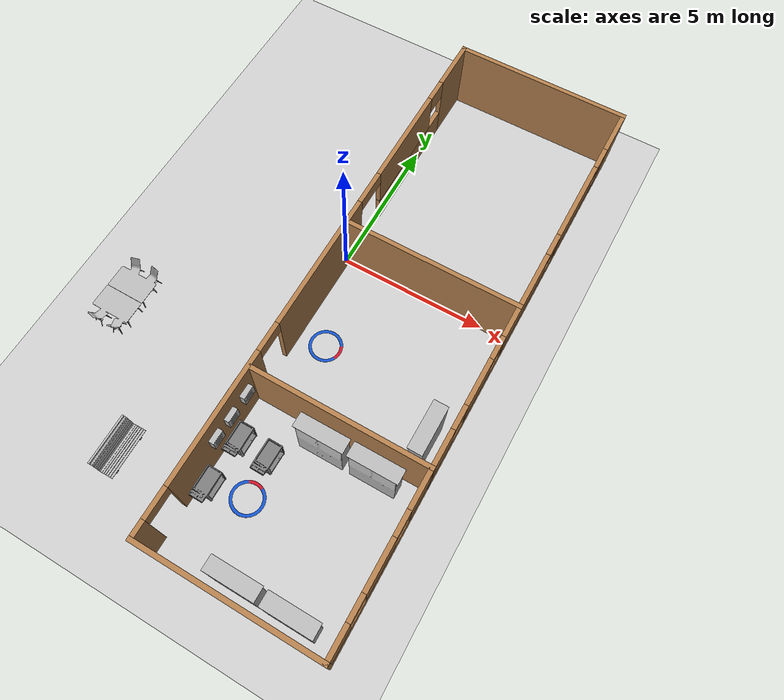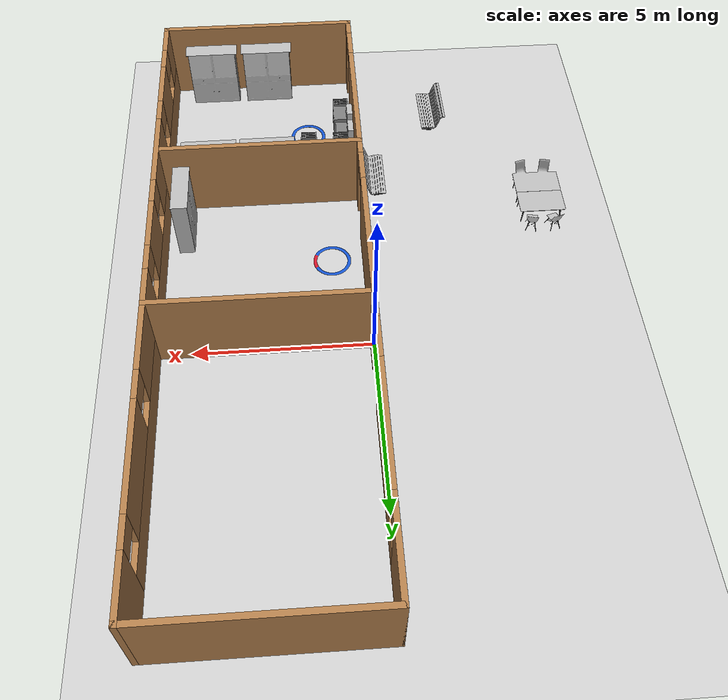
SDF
<sdf version="1.6">
 <world name="default">
  <model name="ground_plane">
   <static>1</static>
   <link name="link">
    <collision name="collision">
     <geometry><plane><normal>0 0 1</normal><size>100 100</size></plane></geometry>
     <surface>
      <contact><collide_bitmask>65535</collide_bitmask></contact>
      <friction><ode><mu>100</mu><mu2>50</mu2></ode></friction>
     </surface>
    </collision>
    <visual name="visual">
     <cast_shadows>0</cast_shadows>
     <geometry><plane><normal>0 0 1</normal><size>100 100</size></plane></geometry>
     <material>
      <script><uri>file://media/materials/scripts/gazebo.material</uri><name>Gazebo/Grey</name></script>
     </material>
    </visual>
   </link>
  </model>
  <model name="chairs_and_table">
   <static>0</static>
   <link name="link">
    <inertial>
     <mass>30</mass>
     <inertia><ixx>1</ixx><ixy>0</ixy><ixz>0</ixz><iyy>1</iyy><iyz>0</iyz><izz>1</izz></inertia>
    </inertial>
    <collision name="collision">
     <geometry><mesh><uri>model://chairs_and_table/chairs_and_table.dae</uri></mesh></geometry>
    </collision>
    <visual name="visual">
     <geometry><mesh><uri>model://chairs_and_table/chairs_and_table.dae</uri></mesh></geometry>
    </visual>
   </link>
   <pose>-5.37703 -4.47738 -0.009666 -0.001996 0.000192 -3.1371</pose>
  </model>
  <model name="closet">
   <static>0</static>
   <link name="link">
    <inertial>
     <mass>10</mass>
     <inertia><ixx>0.2</ixx><ixy>0</ixy><ixz>0</ixz><iyy>0.2</iyy><iyz>0</iyz><izz>0.2</izz></inertia>
    </inertial>
    <collision name="collision"><geometry><mesh><uri>model://closet/closet.dae</uri></mesh></geometry></collision>
    <visual name="visual"><geometry><mesh><uri>model://closet/closet.dae</uri></mesh></geometry></visual>
   </link>
   <pose>5.25745 -4.39069 -0.030005 2.2e-05 0 1.57171</pose>
  </model>
  <model name="closet_3">
   <static>0</static>
   <link name="link">
    <inertial>
     <mass>10</mass>
     <inertia><ixx>0.2</ixx><ixy>0</ixy><ixz>0</ixz><iyy>0.2</iyy><iyz>0</iyz><izz>0.2</izz></inertia>
    </inertial>
    <collision name="collision"><geometry><mesh><uri>model://closet/closet.dae</uri></mesh></geometry></collision>
    <visual name="visual"><geometry><mesh><uri>model://closet/closet.dae</uri></mesh></geometry></visual>
   </link>
   <pose>4.51324 -10.4762 -0.030005 -2.2e-05 0 0.000162</pose>
  </model>
  <model name="closet_4">
   <static>0</static>
   <link name="link">
    <inertial>
     <mass>10</mass>
     <inertia><ixx>0.2</ixx><ixy>0</ixy><ixz>0</ixz><iyy>0.2</iyy><iyz>0</iyz><izz>0.2</izz></inertia>
    </inertial>
    <collision name="collision"><geometry><mesh><uri>model://closet/closet.dae</uri></mesh></geometry></collision>
    <visual name="visual"><geometry><mesh><uri>model://closet/closet.dae</uri></mesh></geometry></visual>
   </link>
   <pose>2.75334 -10.466 -0.03 0 -0 0.000201</pose>
  </model>
  <model name="wall_locker_0">
   <static>1</static>
   <link name="link">
    <inertial>
     <mass>10</mass>
     <inertia><ixx>1</ixx><ixy>0</ixy><ixz>0</ixz><iyy>1</iyy><iyz>0</iyz><izz>1</izz></inertia>
    </inertial>
    <collision name="collision">
     <geometry><mesh><uri>model://wall_locker/wall_locker.dae</uri></mesh></geometry>
    </collision>
    <visual name="visual">
     <geometry><mesh><uri>model://wall_locker/wall_locker.dae</uri></mesh></geometry>
    </visual>
   </link>
   <pose>0.075717 -6.03292 1.19652 0 -0 0</pose>
  </model>
  <model name="wall_locker_1">
   <static>1</static>
   <link name="link">
    <inertial>
     <mass>10</mass>
     <inertia><ixx>1</ixx><ixy>0</ixy><ixz>0</ixz><iyy>1</iyy><iyz>0</iyz><izz>1</izz></inertia>
    </inertial>
    <collision name="collision">
     <geometry><mesh><uri>model://wall_locker/wall_locker.dae</uri></mesh></geometry>
    </collision>
    <visual name="visual">
     <geometry><mesh><uri>model://wall_locker/wall_locker.dae</uri></mesh></geometry>
    </visual>
   </link>
   <pose>0.073263 -6.82374 1.18576 0 -0 0</pose>
  </model>
  <model name="wall_locker_2">
   <static>1</static>
   <link name="link">
    <inertial>
     <mass>10</mass>
     <inertia><ixx>1</ixx><ixy>0</ixy><ixz>0</ixz><iyy>1</iyy><iyz>0</iyz><izz>1</izz></inertia>
    </inertial>
    <collision name="collision">
     <geometry><mesh><uri>model://wall_locker/wall_locker.dae</uri></mesh></geometry>
    </collision>
    <visual name="visual">
     <geometry><mesh><uri>model://wall_locker/wall_locker.dae</uri></mesh></geometry>
    </visual>
   </link>
   <pose>0.057875 -7.55937 1.17876 0 -0 0</pose>
  </model>
  <model name="service_cart_1">
   <static>0</static>
   <link name="link">
    <inertial>
     <mass>10</mass>
     <inertia><ixx>1</ixx><ixy>0</ixy><ixz>0</ixz><iyy>1</iyy><iyz>0</iyz><izz>1</izz></inertia>
    </inertial>
    <collision name="collision">
     <geometry><mesh><uri>model://service_cart/service_cart.dae</uri></mesh></geometry>
    </collision>
    <visual name="visual">
     <geometry><mesh><uri>model://service_cart/service_cart.dae</uri></mesh></geometry>
    </visual>
   </link>
   <pose>0.451875 -8.62013 -0.000537 0.001184 0.000487 -0</pose>
  </model>
  <model name="service_cart_2">
   <static>0</static>
   <link name="link">
    <inertial>
     <mass>10</mass>
     <inertia><ixx>1</ixx><ixy>0</ixy><ixz>0</ixz><iyy>1</iyy><iyz>0</iyz><izz>1</izz></inertia>
    </inertial>
    <collision name="collision">
     <geometry><mesh><uri>model://service_cart/service_cart.dae</uri></mesh></geometry>
    </collision>
    <visual name="visual">
     <geometry><mesh><uri>model://service_cart/service_cart.dae</uri></mesh></geometry>
    </visual>
   </link>
   <pose>0.520794 -7.05742 -0.000537 0.001184 0.000487 -0</pose>
  </model>
  <model name="service_cart_3">
   <static>0</static>
   <link name="link">
    <inertial>
     <mass>10</mass>
     <inertia><ixx>1</ixx><ixy>0</ixy><ixz>0</ixz><iyy>1</iyy><iyz>0</iyz><izz>1</izz></inertia>
    </inertial>
    <collision name="collision">
     <geometry><mesh><uri>model://service_cart/service_cart.dae</uri></mesh></geometry>
    </collision>
    <visual name="visual">
     <geometry><mesh><uri>model://service_cart/service_cart.dae</uri></mesh></geometry>
    </visual>
   </link>
   <pose>1.5331 -7.10701 -0.000536 0.001187 0.000488 -0.010553</pose>
  </model>
  <model name="chairs_and_table_1">
   <static>0</static>
   <link name="link">
    <inertial>
     <mass>30</mass>
     <inertia><ixx>1</ixx><ixy>0</ixy><ixz>0</ixz><iyy>1</iyy><iyz>0</iyz><izz>1</izz></inertia>
    </inertial>
    <collision name="collision">
     <geometry><mesh><uri>model://chairs_and_table/chairs_and_table.dae</uri></mesh></geometry>
    </collision>
    <visual name="visual">
     <geometry><mesh><uri>model://chairs_and_table/chairs_and_table.dae</uri></mesh></geometry>
    </visual>
   </link>
   <pose>-5.38185 -5.2842 -0.009666 -0.001996 0.000192 0.000768</pose>
  </model>
  <model name="wooden_bench_1">
   <static>0</static>
   <link name="link">
    <inertial>
     <pose>0 -0.2 0 0 -0 0</pose>
     <mass>10</mass>
     <inertia><ixx>1</ixx><ixy>0</ixy><ixz>0</ixz><iyy>1</iyy><iyz>0</iyz><izz>1</izz></inertia>
    </inertial>
    <collision name="collision">
     <geometry><mesh><uri>model://wooden_bench/wooden_bench.dae</uri></mesh></geometry>
    </collision>
    <visual name="visual">
     <geometry><mesh><uri>model://wooden_bench/wooden_bench.dae</uri></mesh></geometry>
    </visual>
   </link>
   <pose>-0.572127 -6.21204 0.01737 0.138494 2.4e-05 1.56987</pose>
  </model>
  <model name="wooden_bench_2">
   <static>0</static>
   <link name="link">
    <inertial>
     <pose>0 -0.2 0 0 -0 0</pose>
     <mass>10</mass>
     <inertia><ixx>1</ixx><ixy>0</ixy><ixz>0</ixz><iyy>1</iyy><iyz>0</iyz><izz>1</izz></inertia>
    </inertial>
    <collision name="collision">
     <geometry><mesh><uri>model://wooden_bench/wooden_bench.dae</uri></mesh></geometry>
    </collision>
    <visual name="visual">
     <geometry><mesh><uri>model://wooden_bench/wooden_bench.dae</uri></mesh></geometry>
    </visual>
   </link>
   <pose>-2.37006 -8.99772 0.016774 0.134548 3.4e-05 -1.56092</pose>
  </model>
  <model name="hospital_room2_empty">
   <pose>2.96855 -1.47616 0 0 -0 0</pose>
   <link name="Wall_0">
    <pose>-2.925 0 0 0 -0 -1.5708</pose>
    <visual name="Wall_0_Visual_0">
     <pose>-8.67873 0 1.25 0 -0 0</pose>
     <geometry><box><size>1.79254 0.15 2.5</size></box></geometry>
     <material>
      <script><uri>file://media/materials/scripts/gazebo.material</uri><name>Gazebo/Wood</name></script>
      <ambient>1 1 1 1</ambient>
     </material>
     <meta><layer>0</layer></meta>
    </visual>
    <collision name="Wall_0_Collision_0">
     <geometry><box><size>1.79254 0.15 2.5</size></box></geometry>
     <pose>-8.67873 0 1.25 0 -0 0</pose>
    </collision>
    <visual name="Wall_0_Visual_1">
     <pose>0.083783 0 1.25 0 -0 0</pose>
     <geometry><box><size>4.77575 0.15 2.5</size></box></geometry>
     <material>
      <script><uri>file://media/materials/scripts/gazebo.material</uri><name>Gazebo/Wood</name></script>
      <ambient>1 1 1 1</ambient>
     </material>
     <meta><layer>0</layer></meta>
    </visual>
    <collision name="Wall_0_Collision_1">
     <geometry><box><size>4.77575 0.15 2.5</size></box></geometry>
     <pose>0.083783 0 1.25 0 -0 0</pose>
    </collision>
    <visual name="Wall_0_Visual_2">
     <pose>5.70011 0 1.25 0 -0 0</pose>
     <geometry><box><size>4.4569 0.15 2.5</size></box></geometry>
     <material>
      <script><uri>file://media/materials/scripts/gazebo.material</uri><name>Gazebo/Wood</name></script>
      <ambient>1 1 1 1</ambient>
     </material>
     <meta><layer>0</layer></meta>
    </visual>
    <collision name="Wall_0_Collision_2">
     <geometry><box><size>4.4569 0.15 2.5</size></box></geometry>
     <pose>5.70011 0 1.25 0 -0 0</pose>
    </collision>
    <visual name="Wall_0_Visual_3">
     <pose>9.25178 0 1.25 0 -0 0</pose>
     <geometry><box><size>0.646445 0.15 2.5</size></box></geometry>
     <material>
      <script><uri>file://media/materials/scripts/gazebo.material</uri><name>Gazebo/Wood</name></script>
      <ambient>1 1 1 1</ambient>
     </material>
     <meta><layer>0</layer></meta>
    </visual>
    <collision name="Wall_0_Collision_3">
     <geometry><box><size>0.646445 0.15 2.5</size></box></geometry>
     <pose>9.25178 0 1.25 0 -0 0</pose>
    </collision>
    <visual name="Wall_0_Visual_4">
     <pose>-5.64328 0 0.5 0 -0 0</pose>
     <geometry><box><size>4.27837 0.15 1</size></box></geometry>
     <material>
      <script><uri>file://media/materials/scripts/gazebo.material</uri><name>Gazebo/Wood</name></script>
      <ambient>1 1 1 1</ambient>
     </material>
     <meta><layer>0</layer></meta>
    </visual>
    <collision name="Wall_0_Collision_4">
     <geometry><box><size>4.27837 0.15 1</size></box></geometry>
     <pose>-5.64328 0 0.5 0 -0 0</pose>
    </collision>
    <visual name="Wall_0_Visual_5">
     <pose>-5.24328 0 1.75 0 -0 0</pose>
     <geometry><box><size>3.47837 0.15 1.5</size></box></geometry>
     <material>
      <script><uri>file://media/materials/scripts/gazebo.material</uri><name>Gazebo/Wood</name></script>
      <ambient>1 1 1 1</ambient>
     </material>
     <meta><layer>0</layer></meta>
    </visual>
    <collision name="Wall_0_Collision_5">
     <geometry><box><size>3.47837 0.15 1.5</size></box></geometry>
     <pose>-5.24328 0 1.75 0 -0 0</pose>
    </collision>
    <visual name="Wall_0_Visual_6">
     <pose>-7.38246 0 2.15 0 -0 0</pose>
     <geometry><box><size>0.8 0.15 0.7</size></box></geometry>
     <material>
      <script><uri>file://media/materials/scripts/gazebo.material</uri><name>Gazebo/Wood</name></script>
      <ambient>1 1 1 1</ambient>
     </material>
     <meta><layer>0</layer></meta>
    </visual>
    <collision name="Wall_0_Collision_6">
     <geometry><box><size>0.8 0.15 0.7</size></box></geometry>
     <pose>-7.38246 0 2.15 0 -0 0</pose>
    </collision>
    <visual name="Wall_0_Visual_7">
     <pose>2.97166 0 2.25 0 -0 0</pose>
     <geometry><box><size>1 0.15 0.5</size></box></geometry>
     <material>
      <script><uri>file://media/materials/scripts/gazebo.material</uri><name>Gazebo/Wood</name></script>
      <ambient>1 1 1 1</ambient>
     </material>
     <meta><layer>0</layer></meta>
    </visual>
    <collision name="Wall_0_Collision_7">
     <geometry><box><size>1 0.15 0.5</size></box></geometry>
     <pose>2.97166 0 2.25 0 -0 0</pose>
    </collision>
    <visual name="Wall_0_Visual_8">
     <pose>8.42855 0 2.25 0 -0 0</pose>
     <geometry><box><size>1 0.15 0.5</size></box></geometry>
     <material>
      <script><uri>file://media/materials/scripts/gazebo.material</uri><name>Gazebo/Wood</name></script>
      <ambient>1 1 1 1</ambient>
     </material>
     <meta><layer>0</layer></meta>
    </visual>
    <collision name="Wall_0_Collision_8">
     <geometry><box><size>1 0.15 0.5</size></box></geometry>
     <pose>8.42855 0 2.25 0 -0 0</pose>
    </collision>
    <visual name="Wall_0_Visual_9">
     <pose>-2.90409 0 2.25 0 -0 0</pose>
     <geometry><box><size>1.2 0.15 0.5</size></box></geometry>
     <material>
      <script><uri>file://media/materials/scripts/gazebo.material</uri><name>Gazebo/Wood</name></script>
      <ambient>1 1 1 1</ambient>
     </material>
     <meta><layer>0</layer></meta>
    </visual>
    <collision name="Wall_0_Collision_9">
     <geometry><box><size>1.2 0.15 0.5</size></box></geometry>
     <pose>-2.90409 0 2.25 0 -0 0</pose>
    </collision>
   </link>
   <link name="Wall_2">
    <collision name="Wall_2_Collision">
     <geometry><box><size>6 0.15 2.5</size></box></geometry>
     <pose>0 0 1.25 0 -0 0</pose>
    </collision>
    <visual name="Wall_2_Visual">
     <pose>0 0 1.25 0 -0 0</pose>
     <geometry><box><size>6 0.15 2.5</size></box></geometry>
     <material>
      <script><uri>file://media/materials/scripts/gazebo.material</uri><name>Gazebo/Wood</name></script>
      <ambient>1 1 1 1</ambient>
     </material>
     <meta><layer>0</layer></meta>
    </visual>
    <pose>-0 9.5 0 0 -0 0</pose>
   </link>
   <link name="Wall_3">
    <pose>2.925 0 0 0 -0 -1.5708</pose>
    <visual name="Wall_3_Visual_0">
     <pose>-8.76618 0 1.25 0 -0 0</pose>
     <geometry><box><size>1.61764 0.15 2.5</size></box></geometry>
     <material>
      <script><uri>file://media/materials/scripts/gazebo.material</uri><name>Gazebo/Wood</name></script>
      <ambient>1 1 1 1</ambient>
     </material>
     <meta><layer>0</layer></meta>
    </visual>
    <collision name="Wall_3_Collision_0">
     <geometry><box><size>1.61764 0.15 2.5</size></box></geometry>
     <pose>-8.76618 0 1.25 0 -0 0</pose>
    </collision>
    <visual name="Wall_3_Visual_1">
     <pose>0.808819 0 0.5 0 -0 0</pose>
     <geometry><box><size>17.5324 0.15 1</size></box></geometry>
     <material>
      <script><uri>file://media/materials/scripts/gazebo.material</uri><name>Gazebo/Wood</name></script>
      <ambient>1 1 1 1</ambient>
     </material>
     <meta><layer>0</layer></meta>
    </visual>
    <collision name="Wall_3_Collision_1">
     <geometry><box><size>17.5324 0.15 1</size></box></geometry>
     <pose>0.808819 0 0.5 0 -0 0</pose>
    </collision>
    <visual name="Wall_3_Visual_2">
     <pose>-5.72091 0 1.75 0 -0 0</pose>
     <geometry><box><size>2.87291 0.15 1.5</size></box></geometry>
     <material>
      <script><uri>file://media/materials/scripts/gazebo.material</uri><name>Gazebo/Wood</name></script>
      <ambient>1 1 1 1</ambient>
     </material>
     <meta><layer>0</layer></meta>
    </visual>
    <collision name="Wall_3_Collision_2">
     <geometry><box><size>2.87291 0.15 1.5</size></box></geometry>
     <pose>-5.72091 0 1.75 0 -0 0</pose>
    </collision>
    <visual name="Wall_3_Visual_3">
     <pose>-1.94305 0 1.75 0 -0 0</pose>
     <geometry><box><size>3.08279 0.15 1.5</size></box></geometry>
     <material>
      <script><uri>file://media/materials/scripts/gazebo.material</uri><name>Gazebo/Wood</name></script>
      <ambient>1 1 1 1</ambient>
     </material>
     <meta><layer>0</layer></meta>
    </visual>
    <collision name="Wall_3_Collision_3">
     <geometry><box><size>3.08279 0.15 1.5</size></box></geometry>
     <pose>-1.94305 0 1.75 0 -0 0</pose>
    </collision>
    <visual name="Wall_3_Visual_4">
     <pose>1.18767 0 1.75 0 -0 0</pose>
     <geometry><box><size>1.57865 0.15 1.5</size></box></geometry>
     <material>
      <script><uri>file://media/materials/scripts/gazebo.material</uri><name>Gazebo/Wood</name></script>
      <ambient>1 1 1 1</ambient>
     </material>
     <meta><layer>0</layer></meta>
    </visual>
    <collision name="Wall_3_Collision_4">
     <geometry><box><size>1.57865 0.15 1.5</size></box></geometry>
     <pose>1.18767 0 1.75 0 -0 0</pose>
    </collision>
    <visual name="Wall_3_Visual_5">
     <pose>4.02106 0 1.75 0 -0 0</pose>
     <geometry><box><size>2.48813 0.15 1.5</size></box></geometry>
     <material>
      <script><uri>file://media/materials/scripts/gazebo.material</uri><name>Gazebo/Wood</name></script>
      <ambient>1 1 1 1</ambient>
     </material>
     <meta><layer>0</layer></meta>
    </visual>
    <collision name="Wall_3_Collision_5">
     <geometry><box><size>2.48813 0.15 1.5</size></box></geometry>
     <pose>4.02106 0 1.75 0 -0 0</pose>
    </collision>
    <visual name="Wall_3_Visual_6">
     <pose>6.85445 0 1.75 0 -0 0</pose>
     <geometry><box><size>1.57865 0.15 1.5</size></box></geometry>
     <material>
      <script><uri>file://media/materials/scripts/gazebo.material</uri><name>Gazebo/Wood</name></script>
      <ambient>1 1 1 1</ambient>
     </material>
     <meta><layer>0</layer></meta>
    </visual>
    <collision name="Wall_3_Collision_6">
     <geometry><box><size>1.57865 0.15 1.5</size></box></geometry>
     <pose>6.85445 0 1.75 0 -0 0</pose>
    </collision>
    <visual name="Wall_3_Visual_7">
     <pose>9.00939 0 1.75 0 -0 0</pose>
     <geometry><box><size>1.13123 0.15 1.5</size></box></geometry>
     <material>
      <script><uri>file://media/materials/scripts/gazebo.material</uri><name>Gazebo/Wood</name></script>
      <ambient>1 1 1 1</ambient>
     </material>
     <meta><layer>0</layer></meta>
    </visual>
    <collision name="Wall_3_Collision_7">
     <geometry><box><size>1.13123 0.15 1.5</size></box></geometry>
     <pose>9.00939 0 1.75 0 -0 0</pose>
    </collision>
    <visual name="Wall_3_Visual_8">
     <pose>-7.55736 0 2.15 0 -0 0</pose>
     <geometry><box><size>0.8 0.15 0.7</size></box></geometry>
     <material>
      <script><uri>file://media/materials/scripts/gazebo.material</uri><name>Gazebo/Wood</name></script>
      <ambient>1 1 1 1</ambient>
     </material>
     <meta><layer>0</layer></meta>
    </visual>
    <collision name="Wall_3_Collision_8">
     <geometry><box><size>0.8 0.15 0.7</size></box></geometry>
     <pose>-7.55736 0 2.15 0 -0 0</pose>
    </collision>
    <visual name="Wall_3_Visual_9">
     <pose>-3.88445 0 2.15 0 -0 0</pose>
     <geometry><box><size>0.8 0.15 0.7</size></box></geometry>
     <material>
      <script><uri>file://media/materials/scripts/gazebo.material</uri><name>Gazebo/Wood</name></script>
      <ambient>1 1 1 1</ambient>
     </material>
     <meta><layer>0</layer></meta>
    </visual>
    <collision name="Wall_3_Collision_9">
     <geometry><box><size>0.8 0.15 0.7</size></box></geometry>
     <pose>-3.88445 0 2.15 0 -0 0</pose>
    </collision>
    <visual name="Wall_3_Visual_10">
     <pose>-0.001655 0 2.15 0 -0 0</pose>
     <geometry><box><size>0.8 0.15 0.7</size></box></geometry>
     <material>
      <script><uri>file://media/materials/scripts/gazebo.material</uri><name>Gazebo/Wood</name></script>
      <ambient>1 1 1 1</ambient>
     </material>
     <meta><layer>0</layer></meta>
    </visual>
    <collision name="Wall_3_Collision_10">
     <geometry><box><size>0.8 0.15 0.7</size></box></geometry>
     <pose>-0.001655 0 2.15 0 -0 0</pose>
    </collision>
    <visual name="Wall_3_Visual_11">
     <pose>2.37699 0 2.15 0 -0 0</pose>
     <geometry><box><size>0.8 0.15 0.7</size></box></geometry>
     <material>
      <script><uri>file://media/materials/scripts/gazebo.material</uri><name>Gazebo/Wood</name></script>
      <ambient>1 1 1 1</ambient>
     </material>
     <meta><layer>0</layer></meta>
    </visual>
    <collision name="Wall_3_Collision_11">
     <geometry><box><size>0.8 0.15 0.7</size></box></geometry>
     <pose>2.37699 0 2.15 0 -0 0</pose>
    </collision>
    <visual name="Wall_3_Visual_12">
     <pose>5.66512 0 2.15 0 -0 0</pose>
     <geometry><box><size>0.8 0.15 0.7</size></box></geometry>
     <material>
      <script><uri>file://media/materials/scripts/gazebo.material</uri><name>Gazebo/Wood</name></script>
      <ambient>1 1 1 1</ambient>
     </material>
     <meta><layer>0</layer></meta>
    </visual>
    <collision name="Wall_3_Collision_12">
     <geometry><box><size>0.8 0.15 0.7</size></box></geometry>
     <pose>5.66512 0 2.15 0 -0 0</pose>
    </collision>
    <visual name="Wall_3_Visual_13">
     <pose>8.04377 0 2.15 0 -0 0</pose>
     <geometry><box><size>0.8 0.15 0.7</size></box></geometry>
     <material>
      <script><uri>file://media/materials/scripts/gazebo.material</uri><name>Gazebo/Wood</name></script>
      <ambient>1 1 1 1</ambient>
     </material>
     <meta><layer>0</layer></meta>
    </visual>
    <collision name="Wall_3_Collision_13">
     <geometry><box><size>0.8 0.15 0.7</size></box></geometry>
     <pose>8.04377 0 2.15 0 -0 0</pose>
    </collision>
   </link>
   <link name="Wall_5">
    <collision name="Wall_5_Collision">
     <geometry><box><size>6 0.15 2.5</size></box></geometry>
     <pose>0 0 1.25 0 -0 0</pose>
    </collision>
    <visual name="Wall_5_Visual">
     <pose>0 0 1.25 0 -0 0</pose>
     <geometry><box><size>6 0.15 2.5</size></box></geometry>
     <material>
      <script><uri>file://media/materials/scripts/gazebo.material</uri><name>Gazebo/Wood</name></script>
      <ambient>1 1 1 1</ambient>
     </material>
     <meta><layer>0</layer></meta>
    </visual>
    <pose>-0 -9.5 0 0 -0 0</pose>
   </link>
   <link name="Wall_7">
    <collision name="Wall_7_Collision">
     <geometry><box><size>6 0.15 2.5</size></box></geometry>
     <pose>0 0 1.25 0 -0 0</pose>
    </collision>
    <visual name="Wall_7_Visual">
     <pose>0 0 1.25 0 -0 0</pose>
     <geometry><box><size>6 0.15 2.5</size></box></geometry>
     <material>
      <script><uri>file://media/materials/scripts/gazebo.material</uri><name>Gazebo/Wood</name></script>
      <ambient>1 1 1 1</ambient>
     </material>
     <meta><layer>0</layer></meta>
    </visual>
    <pose>-0 1.5 0 0 -0 0</pose>
   </link>
   <link name="Wall_9">
    <collision name="Wall_9_Collision">
     <geometry><box><size>6 0.15 2.5</size></box></geometry>
     <pose>0 0 1.25 0 -0 0</pose>
    </collision>
    <visual name="Wall_9_Visual">
     <pose>0 0 1.25 0 -0 0</pose>
     <geometry><box><size>6 0.15 2.5</size></box></geometry>
     <material>
      <script><uri>file://media/materials/scripts/gazebo.material</uri><name>Gazebo/Wood</name></script>
      <ambient>1 1 1 1</ambient>
     </material>
     <meta><layer>0</layer></meta>
    </visual>
    <pose>-0 -4 0 0 -0 0</pose>
   </link>
   <static>1</static>
  </model>
  <model name="closet_8">
   <static>0</static>
   <link name="link">
    <inertial>
     <mass>10</mass>
     <inertia><ixx>0.2</ixx><ixy>0</ixy><ixz>0</ixz><iyy>0.2</iyy><iyz>0</iyz><izz>0.2</izz></inertia>
    </inertial>
    <collision name="collision"><geometry><mesh><uri>model://closet/closet.dae</uri></mesh></geometry></collision>
    <visual name="visual"><geometry><mesh><uri>model://closet/closet.dae</uri></mesh></geometry></visual>
   </link>
   <pose>4.47725 -5.97328 -0.030005 -2.2e-05 -0 -3.13729</pose>
  </model>
  <model name="closet_8_clone">
   <static>0</static>
   <link name="link">
    <inertial>
     <mass>10</mass>
     <inertia><ixx>0.2</ixx><ixy>0</ixy><ixz>0</ixz><iyy>0.2</iyy><iyz>0</iyz><izz>0.2</izz></inertia>
    </inertial>
    <collision name="collision"><geometry><mesh><uri>model://closet/closet.dae</uri></mesh></geometry></collision>
    <visual name="visual"><geometry><mesh><uri>model://closet/closet.dae</uri></mesh></geometry></visual>
   </link>
   <pose>2.74607 -5.98714 -0.030005 -2.2e-05 -0 -3.13729</pose>
  </model>
  <model name="marker">
   <static>1</static>
   <link name="link">
    <inertial>
     <mass>10</mass>
     <inertia><ixx>0.2</ixx><ixy>0</ixy><ixz>0</ixz><iyy>0.2</iyy><iyz>0</iyz><izz>0.2</izz></inertia>
    </inertial>
    <visual name="visual"><geometry><mesh><uri>model://marker/marker.dae</uri></mesh></geometry></visual>
   </link>
   <pose>1.51739 -8.3273 0 0 -0 1.57517</pose>
  </model>
  <model name="marker_0">
   <static>1</static>
   <link name="link">
    <inertial>
     <mass>10</mass>
     <inertia><ixx>0.2</ixx><ixy>0</ixy><ixz>0</ixz><iyy>0.2</iyy><iyz>0</iyz><izz>0.2</izz></inertia>
    </inertial>
    <visual name="visual"><geometry><mesh><uri>model://marker/marker.dae</uri></mesh></geometry></visual>
   </link>
   <pose>1.00575 -3.02785 0 0 -0 0</pose>
  </model>
 </world>
</sdf>
